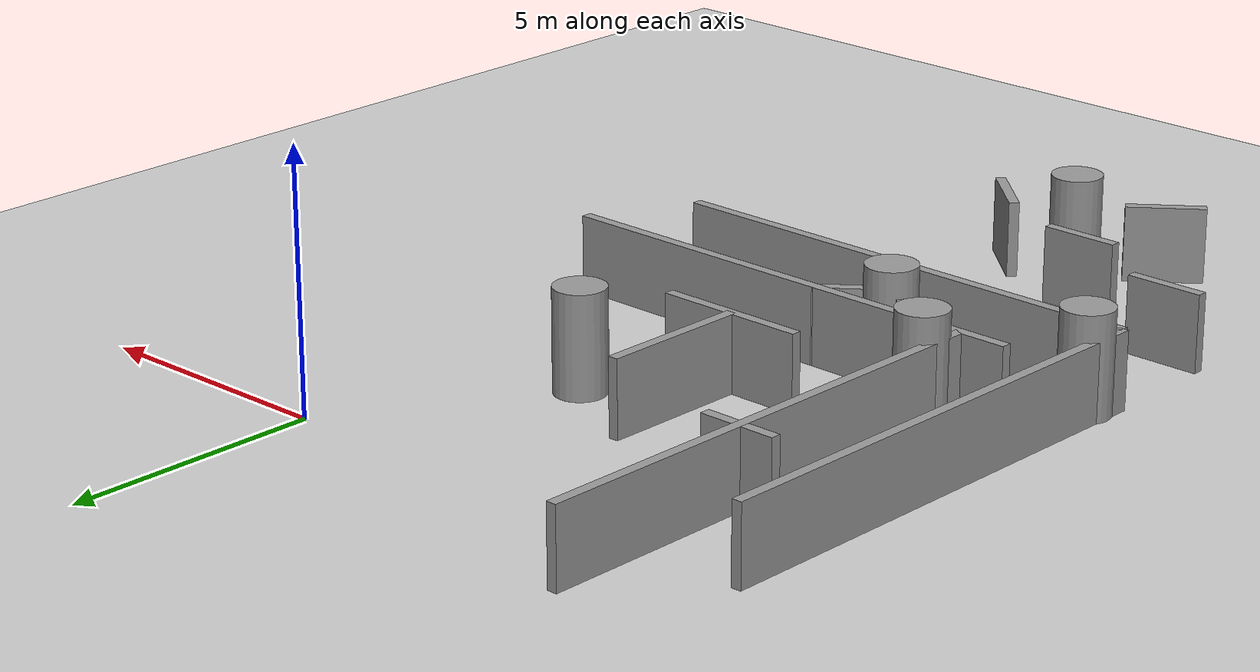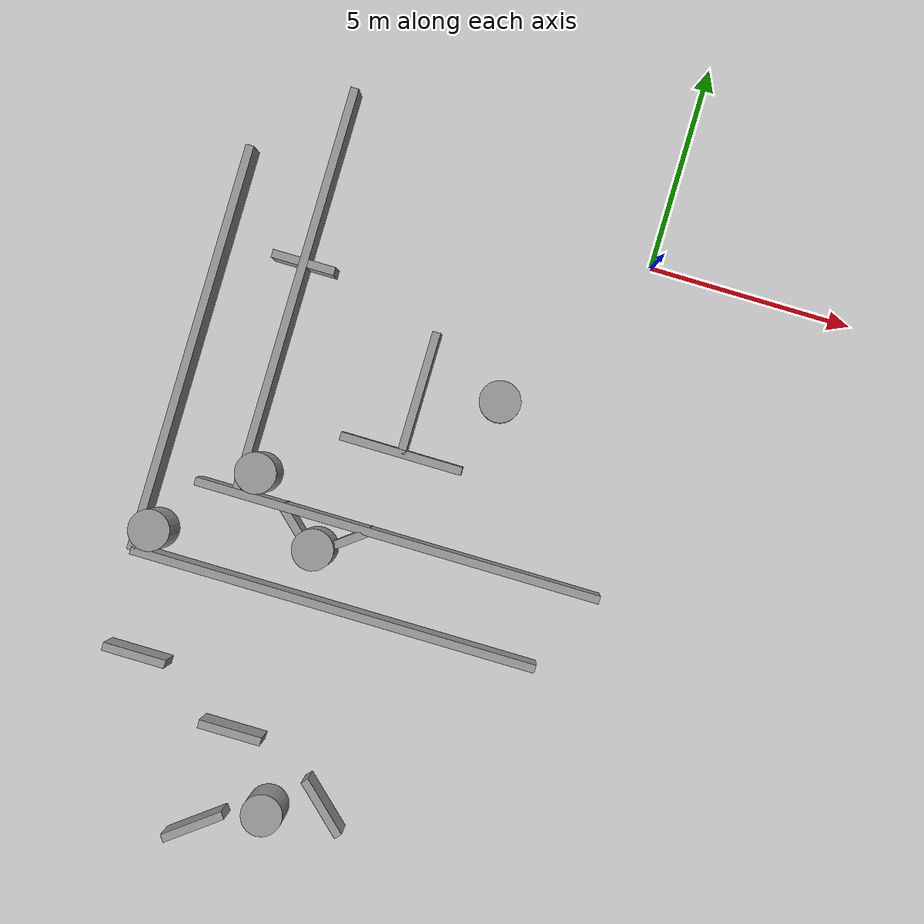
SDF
<sdf version="1.7">
 <world name="default">
  <model name="ground_plane">
   <static>1</static>
   <link name="link">
    <collision name="collision">
     <geometry><plane><normal>0 0 1</normal><size>100 100</size></plane></geometry>
     <surface><friction><ode><mu>100</mu><mu2>50</mu2></ode></friction></surface>
    </collision>
    <visual name="visual">
     <cast_shadows>0</cast_shadows>
     <geometry><plane><normal>0 0 1</normal><size>100 100</size></plane></geometry>
     <material>
      <script><uri>file://media/materials/scripts/gazebo.material</uri><name>Gazebo/Grey</name></script>
     </material>
    </visual>
   </link>
  </model>
  <model name="wall_10x3_clone_0">
   <link name="link">
    <inertial>
     <mass>1</mass>
     <inertia>
      <ixx>0.166667</ixx>
      <ixy>0</ixy>
      <ixz>0</ixz>
      <iyy>0.166667</iyy>
      <iyz>0</iyz>
      <izz>0.166667</izz>
     </inertia>
    </inertial>
    <visual name="visual">
     <geometry><box><size>10 0.2 1.5</size></box></geometry>
     <material>
      <script><name>Gazebo/Grey</name><uri>file://media/materials/scripts/gazebo.material</uri></script>
      <shader type="pixel"><normal_map>__default__</normal_map></shader>
      <ambient>0.3 0.3 0.3 1</ambient>
      <diffuse>0.7 0.7 0.7 1</diffuse>
      <specular>0.01 0.01 0.01 1</specular>
      <emissive>0 0 0 1</emissive>
     </material>
    </visual>
    <collision name="collision">
     <geometry><box><size>10 0.2 1.5</size></box></geometry>
     <surface>
      <friction>
       <ode><mu>1</mu><mu2>1</mu2><fdir1>0 0 0</fdir1><slip1>0</slip1><slip2>0</slip2></ode>
       <torsional>
        <coefficient>1</coefficient>
        <patch_radius>0</patch_radius>
        <surface_radius>0</surface_radius>
        <use_patch_radius>1</use_patch_radius>
        <ode><slip>0</slip></ode>
       </torsional>
      </friction>
      <bounce><restitution_coefficient>0</restitution_coefficient><threshold>1e+06</threshold></bounce>
      <contact>
       <collide_without_contact>0</collide_without_contact>
       <collide_without_contact_bitmask>1</collide_without_contact_bitmask>
       <collide_bitmask>1</collide_bitmask>
       <ode>
        <soft_cfm>0</soft_cfm>
        <soft_erp>0.2</soft_erp>
        <kp>1e+13</kp>
        <kd>1</kd>
        <max_vel>0.01</max_vel>
        <min_depth>0</min_depth>
       </ode>
       <bullet>
        <split_impulse>1</split_impulse>
        <split_impulse_penetration_threshold>-0.01</split_impulse_penetration_threshold>
        <soft_cfm>0</soft_cfm>
        <soft_erp>0.2</soft_erp>
        <kp>1e+13</kp>
        <kd>1</kd>
       </bullet>
      </contact>
     </surface>
    </collision>
   </link>
   <static>1</static>
   <pose>-5 -10 0.75 0 -0 0</pose>
  </model>
  <model name="wall_10x3_clone_3">
   <link name="link">
    <inertial>
     <mass>1</mass>
     <inertia>
      <ixx>0.166667</ixx>
      <ixy>0</ixy>
      <ixz>0</ixz>
      <iyy>0.166667</iyy>
      <iyz>0</iyz>
      <izz>0.166667</izz>
     </inertia>
    </inertial>
    <visual name="visual">
     <geometry><box><size>10 0.2 1.5</size></box></geometry>
     <material>
      <script><name>Gazebo/Grey</name><uri>file://media/materials/scripts/gazebo.material</uri></script>
      <shader type="pixel"><normal_map>__default__</normal_map></shader>
      <ambient>0.3 0.3 0.3 1</ambient>
      <diffuse>0.7 0.7 0.7 1</diffuse>
      <specular>0.01 0.01 0.01 1</specular>
      <emissive>0 0 0 1</emissive>
     </material>
    </visual>
    <collision name="collision">
     <geometry><box><size>10 0.2 1.5</size></box></geometry>
     <surface>
      <friction>
       <ode><mu>1</mu><mu2>1</mu2><fdir1>0 0 0</fdir1><slip1>0</slip1><slip2>0</slip2></ode>
       <torsional>
        <coefficient>1</coefficient>
        <patch_radius>0</patch_radius>
        <surface_radius>0</surface_radius>
        <use_patch_radius>1</use_patch_radius>
        <ode><slip>0</slip></ode>
       </torsional>
      </friction>
      <bounce><restitution_coefficient>0</restitution_coefficient><threshold>1e+06</threshold></bounce>
      <contact>
       <collide_without_contact>0</collide_without_contact>
       <collide_without_contact_bitmask>1</collide_without_contact_bitmask>
       <collide_bitmask>1</collide_bitmask>
       <ode>
        <soft_cfm>0</soft_cfm>
        <soft_erp>0.2</soft_erp>
        <kp>1e+13</kp>
        <kd>1</kd>
        <max_vel>0.01</max_vel>
        <min_depth>0</min_depth>
       </ode>
       <bullet>
        <split_impulse>1</split_impulse>
        <split_impulse_penetration_threshold>-0.01</split_impulse_penetration_threshold>
        <soft_cfm>0</soft_cfm>
        <soft_erp>0.2</soft_erp>
        <kp>1e+13</kp>
        <kd>1</kd>
       </bullet>
      </contact>
     </surface>
    </collision>
   </link>
   <static>1</static>
   <pose>-10 -5 0.75 0 -0 1.5708</pose>
  </model>
  <model name="wall_10x3_clone_2_clone">
   <link name="link">
    <inertial>
     <mass>1</mass>
     <inertia>
      <ixx>0.166667</ixx>
      <ixy>0</ixy>
      <ixz>0</ixz>
      <iyy>0.166667</iyy>
      <iyz>0</iyz>
      <izz>0.166667</izz>
     </inertia>
    </inertial>
    <visual name="visual">
     <geometry><box><size>10 0.2 1.5</size></box></geometry>
     <material>
      <script><name>Gazebo/Grey</name><uri>file://media/materials/scripts/gazebo.material</uri></script>
      <shader type="pixel"><normal_map>__default__</normal_map></shader>
      <ambient>0.3 0.3 0.3 1</ambient>
      <diffuse>0.7 0.7 0.7 1</diffuse>
      <specular>0.01 0.01 0.01 1</specular>
      <emissive>0 0 0 1</emissive>
     </material>
    </visual>
    <collision name="collision">
     <geometry><box><size>10 0.2 1.5</size></box></geometry>
     <surface>
      <friction>
       <ode><mu>1</mu><mu2>1</mu2><fdir1>0 0 0</fdir1><slip1>0</slip1><slip2>0</slip2></ode>
       <torsional>
        <coefficient>1</coefficient>
        <patch_radius>0</patch_radius>
        <surface_radius>0</surface_radius>
        <use_patch_radius>1</use_patch_radius>
        <ode><slip>0</slip></ode>
       </torsional>
      </friction>
      <bounce><restitution_coefficient>0</restitution_coefficient><threshold>1e+06</threshold></bounce>
      <contact>
       <collide_without_contact>0</collide_without_contact>
       <collide_without_contact_bitmask>1</collide_without_contact_bitmask>
       <collide_bitmask>1</collide_bitmask>
       <ode>
        <soft_cfm>0</soft_cfm>
        <soft_erp>0.2</soft_erp>
        <kp>1e+13</kp>
        <kd>1</kd>
        <max_vel>0.01</max_vel>
        <min_depth>0</min_depth>
       </ode>
       <bullet>
        <split_impulse>1</split_impulse>
        <split_impulse_penetration_threshold>-0.01</split_impulse_penetration_threshold>
        <soft_cfm>0</soft_cfm>
        <soft_erp>0.2</soft_erp>
        <kp>1e+13</kp>
        <kd>1</kd>
       </bullet>
      </contact>
     </surface>
    </collision>
   </link>
   <static>1</static>
   <pose>-4 -8 0.75 0 -0 0</pose>
  </model>
  <model name="wall_10x3_clone_3_clone_0_clone_clone_clone_clone_clone_0">
   <link name="link">
    <inertial>
     <mass>1</mass>
     <inertia>
      <ixx>0.166667</ixx>
      <ixy>0</ixy>
      <ixz>0</ixz>
      <iyy>0.166667</iyy>
      <iyz>0</iyz>
      <izz>0.166667</izz>
     </inertia>
    </inertial>
    <visual name="visual">
     <geometry><box><size>3 0.2 1.5</size></box></geometry>
     <material>
      <script><name>Gazebo/Grey</name><uri>file://media/materials/scripts/gazebo.material</uri></script>
      <shader type="pixel"><normal_map>__default__</normal_map></shader>
      <ambient>0.3 0.3 0.3 1</ambient>
      <diffuse>0.7 0.7 0.7 1</diffuse>
      <specular>0.01 0.01 0.01 1</specular>
      <emissive>0 0 0 1</emissive>
     </material>
    </visual>
    <collision name="collision">
     <geometry><box><size>3 0.2 1.5</size></box></geometry>
     <surface>
      <friction>
       <ode><mu>1</mu><mu2>1</mu2><fdir1>0 0 0</fdir1><slip1>0</slip1><slip2>0</slip2></ode>
       <torsional>
        <coefficient>1</coefficient>
        <patch_radius>0</patch_radius>
        <surface_radius>0</surface_radius>
        <use_patch_radius>1</use_patch_radius>
        <ode><slip>0</slip></ode>
       </torsional>
      </friction>
      <bounce><restitution_coefficient>0</restitution_coefficient><threshold>1e+06</threshold></bounce>
      <contact>
       <collide_without_contact>0</collide_without_contact>
       <collide_without_contact_bitmask>1</collide_without_contact_bitmask>
       <collide_bitmask>1</collide_bitmask>
       <ode>
        <soft_cfm>0</soft_cfm>
        <soft_erp>0.2</soft_erp>
        <kp>1e+13</kp>
        <kd>1</kd>
        <max_vel>0.01</max_vel>
        <min_depth>0</min_depth>
       </ode>
       <bullet>
        <split_impulse>1</split_impulse>
        <split_impulse_penetration_threshold>-0.01</split_impulse_penetration_threshold>
        <soft_cfm>0</soft_cfm>
        <soft_erp>0.2</soft_erp>
        <kp>1e+13</kp>
        <kd>1</kd>
       </bullet>
      </contact>
     </surface>
    </collision>
   </link>
   <static>1</static>
   <pose>-4.5 -6 0.75 0 -0 0</pose>
  </model>
  <model name="wall_10x3_clone_3_clone_0_clone_clone_clone_0">
   <link name="link">
    <inertial>
     <mass>1</mass>
     <inertia>
      <ixx>0.166667</ixx>
      <ixy>0</ixy>
      <ixz>0</ixz>
      <iyy>0.166667</iyy>
      <iyz>0</iyz>
      <izz>0.166667</izz>
     </inertia>
    </inertial>
    <visual name="visual">
     <geometry><box><size>10 0.2 1.5</size></box></geometry>
     <material>
      <script><name>Gazebo/Grey</name><uri>file://media/materials/scripts/gazebo.material</uri></script>
      <shader type="pixel"><normal_map>__default__</normal_map></shader>
      <ambient>0.3 0.3 0.3 1</ambient>
      <diffuse>0.7 0.7 0.7 1</diffuse>
      <specular>0.01 0.01 0.01 1</specular>
      <emissive>0 0 0 1</emissive>
     </material>
    </visual>
    <collision name="collision">
     <geometry><box><size>10 0.2 1.5</size></box></geometry>
     <surface>
      <friction>
       <ode><mu>1</mu><mu2>1</mu2><fdir1>0 0 0</fdir1><slip1>0</slip1><slip2>0</slip2></ode>
       <torsional>
        <coefficient>1</coefficient>
        <patch_radius>0</patch_radius>
        <surface_radius>0</surface_radius>
        <use_patch_radius>1</use_patch_radius>
        <ode><slip>0</slip></ode>
       </torsional>
      </friction>
      <bounce><restitution_coefficient>0</restitution_coefficient><threshold>1e+06</threshold></bounce>
      <contact>
       <collide_without_contact>0</collide_without_contact>
       <collide_without_contact_bitmask>1</collide_without_contact_bitmask>
       <collide_bitmask>1</collide_bitmask>
       <ode>
        <soft_cfm>0</soft_cfm>
        <soft_erp>0.2</soft_erp>
        <kp>1e+13</kp>
        <kd>1</kd>
        <max_vel>0.01</max_vel>
        <min_depth>0</min_depth>
       </ode>
       <bullet>
        <split_impulse>1</split_impulse>
        <split_impulse_penetration_threshold>-0.01</split_impulse_penetration_threshold>
        <soft_cfm>0</soft_cfm>
        <soft_erp>0.2</soft_erp>
        <kp>1e+13</kp>
        <kd>1</kd>
       </bullet>
      </contact>
     </surface>
    </collision>
   </link>
   <static>1</static>
   <pose>-8 -3 0.75 0 -0 1.5708</pose>
  </model>
  <model name="wall_10x3_clone_3_clone_0_clone_clone_clone_clone_6_clone_7">
   <link name="link">
    <inertial>
     <mass>1</mass>
     <inertia>
      <ixx>0.166667</ixx>
      <ixy>0</ixy>
      <ixz>0</ixz>
      <iyy>0.166667</iyy>
      <iyz>0</iyz>
      <izz>0.166667</izz>
     </inertia>
    </inertial>
    <visual name="visual">
     <geometry><box><size>3 0.2 1.5</size></box></geometry>
     <material>
      <script><name>Gazebo/Grey</name><uri>file://media/materials/scripts/gazebo.material</uri></script>
      <shader type="pixel"><normal_map>__default__</normal_map></shader>
      <ambient>0.3 0.3 0.3 1</ambient>
      <diffuse>0.7 0.7 0.7 1</diffuse>
      <specular>0.01 0.01 0.01 1</specular>
      <emissive>0 0 0 1</emissive>
     </material>
    </visual>
    <collision name="collision">
     <geometry><box><size>3 0.2 1.5</size></box></geometry>
     <surface>
      <friction>
       <ode><mu>1</mu><mu2>1</mu2><fdir1>0 0 0</fdir1><slip1>0</slip1><slip2>0</slip2></ode>
       <torsional>
        <coefficient>1</coefficient>
        <patch_radius>0</patch_radius>
        <surface_radius>0</surface_radius>
        <use_patch_radius>1</use_patch_radius>
        <ode><slip>0</slip></ode>
       </torsional>
      </friction>
      <bounce><restitution_coefficient>0</restitution_coefficient><threshold>1e+06</threshold></bounce>
      <contact>
       <collide_without_contact>0</collide_without_contact>
       <collide_without_contact_bitmask>1</collide_without_contact_bitmask>
       <collide_bitmask>1</collide_bitmask>
       <ode>
        <soft_cfm>0</soft_cfm>
        <soft_erp>0.2</soft_erp>
        <kp>1e+13</kp>
        <kd>1</kd>
        <max_vel>0.01</max_vel>
        <min_depth>0</min_depth>
       </ode>
       <bullet>
        <split_impulse>1</split_impulse>
        <split_impulse_penetration_threshold>-0.01</split_impulse_penetration_threshold>
        <soft_cfm>0</soft_cfm>
        <soft_erp>0.2</soft_erp>
        <kp>1e+13</kp>
        <kd>1</kd>
       </bullet>
      </contact>
     </surface>
    </collision>
   </link>
   <static>1</static>
   <pose>-4.5 -4.5 0.75 0 -0 1.5708</pose>
  </model>
  <model name="wall_10x3_clone_3_clone_0_clone_clone_clone_clone_clone_0_clone">
   <link name="link">
    <inertial>
     <mass>0.514545</mass>
     <inertia>
      <ixx>0.0981923</ixx>
      <ixy>0</ixy>
      <ixz>0</ixz>
      <iyy>0.198649</iyy>
      <iyz>0</iyz>
      <izz>0.103887</izz>
     </inertia>
    </inertial>
    <visual name="visual">
     <geometry><box><size>1.54363 0.2 1.5</size></box></geometry>
     <material>
      <script><name>Gazebo/Grey</name><uri>file://media/materials/scripts/gazebo.material</uri></script>
      <shader type="pixel"><normal_map>__default__</normal_map></shader>
      <ambient>0.3 0.3 0.3 1</ambient>
      <diffuse>0.7 0.7 0.7 1</diffuse>
      <specular>0.01 0.01 0.01 1</specular>
      <emissive>0 0 0 1</emissive>
     </material>
    </visual>
    <collision name="collision">
     <geometry><box><size>1.54363 0.2 1.5</size></box></geometry>
     <surface>
      <friction>
       <ode><mu>1</mu><mu2>1</mu2><fdir1>0 0 0</fdir1><slip1>0</slip1><slip2>0</slip2></ode>
       <torsional>
        <coefficient>1</coefficient>
        <patch_radius>0</patch_radius>
        <surface_radius>0</surface_radius>
        <use_patch_radius>1</use_patch_radius>
        <ode><slip>0</slip></ode>
       </torsional>
      </friction>
      <bounce><restitution_coefficient>0</restitution_coefficient><threshold>1e+06</threshold></bounce>
      <contact>
       <collide_without_contact>0</collide_without_contact>
       <collide_without_contact_bitmask>1</collide_without_contact_bitmask>
       <collide_bitmask>1</collide_bitmask>
       <ode>
        <soft_cfm>0</soft_cfm>
        <soft_erp>0.2</soft_erp>
        <kp>1e+13</kp>
        <kd>1</kd>
        <max_vel>0.01</max_vel>
        <min_depth>0</min_depth>
       </ode>
       <bullet>
        <split_impulse>1</split_impulse>
        <split_impulse_penetration_threshold>-0.01</split_impulse_penetration_threshold>
        <soft_cfm>0</soft_cfm>
        <soft_erp>0.2</soft_erp>
        <kp>1e+13</kp>
        <kd>1</kd>
       </bullet>
      </contact>
     </surface>
    </collision>
   </link>
   <static>1</static>
   <pose>-6.52231 -13.4942 0.75 0 -0 0</pose>
  </model>
  <model name="wall_10x3_clone_3_clone_0_clone_clone_clone_clone_clone_0_clone_clone">
   <link name="link">
    <inertial>
     <mass>0.514545</mass>
     <inertia>
      <ixx>0.0981923</ixx>
      <ixy>0</ixy>
      <ixz>0</ixz>
      <iyy>0.198649</iyy>
      <iyz>0</iyz>
      <izz>0.103887</izz>
     </inertia>
    </inertial>
    <pose>0 0 0 0 0 -0.740677</pose>
    <visual name="visual">
     <geometry><box><size>1.54363 0.2 1.5</size></box></geometry>
     <material>
      <script><name>Gazebo/Grey</name><uri>file://media/materials/scripts/gazebo.material</uri></script>
      <shader type="pixel"><normal_map>__default__</normal_map></shader>
      <ambient>0.3 0.3 0.3 1</ambient>
      <diffuse>0.7 0.7 0.7 1</diffuse>
      <specular>0.01 0.01 0.01 1</specular>
      <emissive>0 0 0 1</emissive>
     </material>
    </visual>
    <collision name="collision">
     <geometry><box><size>1.54363 0.2 1.5</size></box></geometry>
     <surface>
      <friction>
       <ode><mu>1</mu><mu2>1</mu2><fdir1>0 0 0</fdir1><slip1>0</slip1><slip2>0</slip2></ode>
       <torsional>
        <coefficient>1</coefficient>
        <patch_radius>0</patch_radius>
        <surface_radius>0</surface_radius>
        <use_patch_radius>1</use_patch_radius>
        <ode><slip>0</slip></ode>
       </torsional>
      </friction>
      <bounce><restitution_coefficient>0</restitution_coefficient><threshold>1e+06</threshold></bounce>
      <contact>
       <collide_without_contact>0</collide_without_contact>
       <collide_without_contact_bitmask>1</collide_without_contact_bitmask>
       <collide_bitmask>1</collide_bitmask>
       <ode>
        <soft_cfm>0</soft_cfm>
        <soft_erp>0.2</soft_erp>
        <kp>1e+13</kp>
        <kd>1</kd>
        <max_vel>0.01</max_vel>
        <min_depth>0</min_depth>
       </ode>
       <bullet>
        <split_impulse>1</split_impulse>
        <split_impulse_penetration_threshold>-0.01</split_impulse_penetration_threshold>
        <soft_cfm>0</soft_cfm>
        <soft_erp>0.2</soft_erp>
        <kp>1e+13</kp>
        <kd>1</kd>
       </bullet>
      </contact>
     </surface>
    </collision>
   </link>
   <static>1</static>
   <pose>-3.92402 -14.6044 0.75 0 -0 0</pose>
  </model>
  <model name="wall_10x3_clone_3_clone_0_clone_clone_clone_clone_clone_0_clone_clone_clone">
   <link name="link">
    <inertial>
     <mass>0.514545</mass>
     <inertia>
      <ixx>0.0981923</ixx>
      <ixy>0</ixy>
      <ixz>0</ixz>
      <iyy>0.198649</iyy>
      <iyz>0</iyz>
      <izz>0.103887</izz>
     </inertia>
    </inertial>
    <pose>0 0 0 0 0 -2.49068</pose>
    <visual name="visual">
     <geometry><box><size>1.54363 0.2 1.5</size></box></geometry>
     <material>
      <script><name>Gazebo/Grey</name><uri>file://media/materials/scripts/gazebo.material</uri></script>
      <shader type="pixel"><normal_map>__default__</normal_map></shader>
      <ambient>0.3 0.3 0.3 1</ambient>
      <diffuse>0.7 0.7 0.7 1</diffuse>
      <specular>0.01 0.01 0.01 1</specular>
      <emissive>0 0 0 1</emissive>
     </material>
    </visual>
    <collision name="collision">
     <geometry><box><size>1.54363 0.2 1.5</size></box></geometry>
     <surface>
      <friction>
       <ode><mu>1</mu><mu2>1</mu2><fdir1>0 0 0</fdir1><slip1>0</slip1><slip2>0</slip2></ode>
       <torsional>
        <coefficient>1</coefficient>
        <patch_radius>0</patch_radius>
        <surface_radius>0</surface_radius>
        <use_patch_radius>1</use_patch_radius>
        <ode><slip>0</slip></ode>
       </torsional>
      </friction>
      <bounce><restitution_coefficient>0</restitution_coefficient><threshold>1e+06</threshold></bounce>
      <contact>
       <collide_without_contact>0</collide_without_contact>
       <collide_without_contact_bitmask>1</collide_without_contact_bitmask>
       <collide_bitmask>1</collide_bitmask>
       <ode>
        <soft_cfm>0</soft_cfm>
        <soft_erp>0.2</soft_erp>
        <kp>1e+13</kp>
        <kd>1</kd>
        <max_vel>0.01</max_vel>
        <min_depth>0</min_depth>
       </ode>
       <bullet>
        <split_impulse>1</split_impulse>
        <split_impulse_penetration_threshold>-0.01</split_impulse_penetration_threshold>
        <soft_cfm>0</soft_cfm>
        <soft_erp>0.2</soft_erp>
        <kp>1e+13</kp>
        <kd>1</kd>
       </bullet>
      </contact>
     </surface>
    </collision>
   </link>
   <static>1</static>
   <pose>-6.73897 -15.8855 0.75 0 -0 0</pose>
  </model>
  <model name="wall_10x3_clone_3_clone_0_clone_clone_clone_clone_clone_0_clone_clone_6">
   <link name="link">
    <inertial>
     <mass>0.514545</mass>
     <inertia>
      <ixx>0.0981923</ixx>
      <ixy>0</ixy>
      <ixz>0</ixz>
      <iyy>0.198649</iyy>
      <iyz>0</iyz>
      <izz>0.103887</izz>
     </inertia>
    </inertial>
    <visual name="visual">
     <geometry><box><size>1.54363 0.2 1.5</size></box></geometry>
     <material>
      <script><name>Gazebo/Grey</name><uri>file://media/materials/scripts/gazebo.material</uri></script>
      <shader type="pixel"><normal_map>__default__</normal_map></shader>
      <ambient>0.3 0.3 0.3 1</ambient>
      <diffuse>0.7 0.7 0.7 1</diffuse>
      <specular>0.01 0.01 0.01 1</specular>
      <emissive>0 0 0 1</emissive>
     </material>
    </visual>
    <collision name="collision">
     <geometry><box><size>1.54363 0.2 1.5</size></box></geometry>
     <surface>
      <friction>
       <ode><mu>1</mu><mu2>1</mu2><fdir1>0 0 0</fdir1><slip1>0</slip1><slip2>0</slip2></ode>
       <torsional>
        <coefficient>1</coefficient>
        <patch_radius>0</patch_radius>
        <surface_radius>0</surface_radius>
        <use_patch_radius>1</use_patch_radius>
        <ode><slip>0</slip></ode>
       </torsional>
      </friction>
      <bounce><restitution_coefficient>0</restitution_coefficient><threshold>1e+06</threshold></bounce>
      <contact>
       <collide_without_contact>0</collide_without_contact>
       <collide_without_contact_bitmask>1</collide_without_contact_bitmask>
       <collide_bitmask>1</collide_bitmask>
       <ode>
        <soft_cfm>0</soft_cfm>
        <soft_erp>0.2</soft_erp>
        <kp>1e+13</kp>
        <kd>1</kd>
        <max_vel>0.01</max_vel>
        <min_depth>0</min_depth>
       </ode>
       <bullet>
        <split_impulse>1</split_impulse>
        <split_impulse_penetration_threshold>-0.01</split_impulse_penetration_threshold>
        <soft_cfm>0</soft_cfm>
        <soft_erp>0.2</soft_erp>
        <kp>1e+13</kp>
        <kd>1</kd>
       </bullet>
      </contact>
     </surface>
    </collision>
   </link>
   <static>1</static>
   <pose>-8.00144 -2.30721 0.75 0 -0 0</pose>
  </model>
  <model name="wall_10x3_clone_3_clone_0_clone_clone_clone_clone_clone_0_clone_clone_9">
   <link name="link">
    <inertial>
     <mass>0.514545</mass>
     <inertia>
      <ixx>0.0981923</ixx>
      <ixy>0</ixy>
      <ixz>0</ixz>
      <iyy>0.198649</iyy>
      <iyz>0</iyz>
      <izz>0.103887</izz>
     </inertia>
    </inertial>
    <visual name="visual">
     <geometry><box><size>1.54363 0.2 1.5</size></box></geometry>
     <material>
      <script><name>Gazebo/Grey</name><uri>file://media/materials/scripts/gazebo.material</uri></script>
      <shader type="pixel"><normal_map>__default__</normal_map></shader>
      <ambient>0.3 0.3 0.3 1</ambient>
      <diffuse>0.7 0.7 0.7 1</diffuse>
      <specular>0.01 0.01 0.01 1</specular>
      <emissive>0 0 0 1</emissive>
     </material>
    </visual>
    <collision name="collision">
     <geometry><box><size>1.54363 0.2 1.5</size></box></geometry>
     <surface>
      <friction>
       <ode><mu>1</mu><mu2>1</mu2><fdir1>0 0 0</fdir1><slip1>0</slip1><slip2>0</slip2></ode>
       <torsional>
        <coefficient>1</coefficient>
        <patch_radius>0</patch_radius>
        <surface_radius>0</surface_radius>
        <use_patch_radius>1</use_patch_radius>
        <ode><slip>0</slip></ode>
       </torsional>
      </friction>
      <bounce><restitution_coefficient>0</restitution_coefficient><threshold>1e+06</threshold></bounce>
      <contact>
       <collide_without_contact>0</collide_without_contact>
       <collide_without_contact_bitmask>1</collide_without_contact_bitmask>
       <collide_bitmask>1</collide_bitmask>
       <ode>
        <soft_cfm>0</soft_cfm>
        <soft_erp>0.2</soft_erp>
        <kp>1e+13</kp>
        <kd>1</kd>
        <max_vel>0.01</max_vel>
        <min_depth>0</min_depth>
       </ode>
       <bullet>
        <split_impulse>1</split_impulse>
        <split_impulse_penetration_threshold>-0.01</split_impulse_penetration_threshold>
        <soft_cfm>0</soft_cfm>
        <soft_erp>0.2</soft_erp>
        <kp>1e+13</kp>
        <kd>1</kd>
       </bullet>
      </contact>
     </surface>
    </collision>
   </link>
   <static>1</static>
   <pose>-9.22014 -12.3756 0.75 0 -0 0</pose>
  </model>
  <model name="wall_10x3_clone_3_clone_0_clone_clone_clone_clone_clone_0_clone_clone_clone_clone_0">
   <link name="link">
    <inertial>
     <mass>0.514545</mass>
     <inertia>
      <ixx>0.0981923</ixx>
      <ixy>0</ixy>
      <ixz>0</ixz>
      <iyy>0.198649</iyy>
      <iyz>0</iyz>
      <izz>0.103887</izz>
     </inertia>
    </inertial>
    <pose>0 0 0 0 0 -2.49068</pose>
    <visual name="visual">
     <geometry><box><size>1.54363 0.2 1.5</size></box></geometry>
     <material>
      <script><name>Gazebo/Grey</name><uri>file://media/materials/scripts/gazebo.material</uri></script>
      <shader type="pixel"><normal_map>__default__</normal_map></shader>
      <ambient>0.3 0.3 0.3 1</ambient>
      <diffuse>0.7 0.7 0.7 1</diffuse>
      <specular>0.01 0.01 0.01 1</specular>
      <emissive>0 0 0 1</emissive>
     </material>
    </visual>
    <collision name="collision">
     <geometry><box><size>1.54363 0.2 1.5</size></box></geometry>
     <surface>
      <friction>
       <ode><mu>1</mu><mu2>1</mu2><fdir1>0 0 0</fdir1><slip1>0</slip1><slip2>0</slip2></ode>
       <torsional>
        <coefficient>1</coefficient>
        <patch_radius>0</patch_radius>
        <surface_radius>0</surface_radius>
        <use_patch_radius>1</use_patch_radius>
        <ode><slip>0</slip></ode>
       </torsional>
      </friction>
      <bounce><restitution_coefficient>0</restitution_coefficient><threshold>1e+06</threshold></bounce>
      <contact>
       <collide_without_contact>0</collide_without_contact>
       <collide_without_contact_bitmask>1</collide_without_contact_bitmask>
       <collide_bitmask>1</collide_bitmask>
       <ode>
        <soft_cfm>0</soft_cfm>
        <soft_erp>0.2</soft_erp>
        <kp>1e+13</kp>
        <kd>1</kd>
        <max_vel>0.01</max_vel>
        <min_depth>0</min_depth>
       </ode>
       <bullet>
        <split_impulse>1</split_impulse>
        <split_impulse_penetration_threshold>-0.01</split_impulse_penetration_threshold>
        <soft_cfm>0</soft_cfm>
        <soft_erp>0.2</soft_erp>
        <kp>1e+13</kp>
        <kd>1</kd>
       </bullet>
      </contact>
     </surface>
    </collision>
   </link>
   <static>1</static>
   <pose>-5.26522 -8.43251 0.75 0 -0 0</pose>
  </model>
  <model name="wall_10x3_clone_3_clone_0_clone_clone_clone_clone_clone_0_clone_clone_clone_1">
   <link name="link">
    <inertial>
     <mass>0.514545</mass>
     <inertia>
      <ixx>0.0981923</ixx>
      <ixy>0</ixy>
      <ixz>0</ixz>
      <iyy>0.198649</iyy>
      <iyz>0</iyz>
      <izz>0.103887</izz>
     </inertia>
    </inertial>
    <pose>0 0 0 0 0 -0.740677</pose>
    <visual name="visual">
     <geometry><box><size>1.54363 0.2 1.5</size></box></geometry>
     <material>
      <script><name>Gazebo/Grey</name><uri>file://media/materials/scripts/gazebo.material</uri></script>
      <shader type="pixel"><normal_map>__default__</normal_map></shader>
      <ambient>0.3 0.3 0.3 1</ambient>
      <diffuse>0.7 0.7 0.7 1</diffuse>
      <specular>0.01 0.01 0.01 1</specular>
      <emissive>0 0 0 1</emissive>
     </material>
    </visual>
    <collision name="collision">
     <geometry><box><size>1.54363 0.2 1.5</size></box></geometry>
     <surface>
      <friction>
       <ode><mu>1</mu><mu2>1</mu2><fdir1>0 0 0</fdir1><slip1>0</slip1><slip2>0</slip2></ode>
       <torsional>
        <coefficient>1</coefficient>
        <patch_radius>0</patch_radius>
        <surface_radius>0</surface_radius>
        <use_patch_radius>1</use_patch_radius>
        <ode><slip>0</slip></ode>
       </torsional>
      </friction>
      <bounce><restitution_coefficient>0</restitution_coefficient><threshold>1e+06</threshold></bounce>
      <contact>
       <collide_without_contact>0</collide_without_contact>
       <collide_without_contact_bitmask>1</collide_without_contact_bitmask>
       <collide_bitmask>1</collide_bitmask>
       <ode>
        <soft_cfm>0</soft_cfm>
        <soft_erp>0.2</soft_erp>
        <kp>1e+13</kp>
        <kd>1</kd>
        <max_vel>0.01</max_vel>
        <min_depth>0</min_depth>
       </ode>
       <bullet>
        <split_impulse>1</split_impulse>
        <split_impulse_penetration_threshold>-0.01</split_impulse_penetration_threshold>
        <soft_cfm>0</soft_cfm>
        <soft_erp>0.2</soft_erp>
        <kp>1e+13</kp>
        <kd>1</kd>
       </bullet>
      </contact>
     </surface>
    </collision>
   </link>
   <static>1</static>
   <pose>-6.31012 -8.48241 0.75 0 -0 0</pose>
  </model>
  <model name="unit_cylinder">
   <link name="link">
    <inertial>
     <mass>1</mass>
     <inertia><ixx>0.145833</ixx><ixy>0</ixy><ixz>0</ixz><iyy>0.145833</iyy><iyz>0</iyz><izz>0.125</izz></inertia>
    </inertial>
    <visual name="visual">
     <geometry><cylinder><radius>0.5</radius><length>2</length></cylinder></geometry>
     <material>
      <script><name>Gazebo/Grey</name><uri>file://media/materials/scripts/gazebo.material</uri></script>
      <shader type="pixel"><normal_map>__default__</normal_map></shader>
      <ambient>0.3 0.3 0.3 1</ambient>
      <diffuse>0.7 0.7 0.7 1</diffuse>
      <specular>0.01 0.01 0.01 1</specular>
      <emissive>0 0 0 1</emissive>
     </material>
    </visual>
    <collision name="collision">
     <geometry><cylinder><radius>0.5</radius><length>2</length></cylinder></geometry>
     <surface>
      <friction>
       <ode><mu>1</mu><mu2>1</mu2><fdir1>0 0 0</fdir1><slip1>0</slip1><slip2>0</slip2></ode>
       <torsional>
        <coefficient>1</coefficient>
        <patch_radius>0</patch_radius>
        <surface_radius>0</surface_radius>
        <use_patch_radius>1</use_patch_radius>
        <ode><slip>0</slip></ode>
       </torsional>
      </friction>
      <bounce><restitution_coefficient>0</restitution_coefficient><threshold>1e+06</threshold></bounce>
      <contact>
       <collide_without_contact>0</collide_without_contact>
       <collide_without_contact_bitmask>1</collide_without_contact_bitmask>
       <collide_bitmask>1</collide_bitmask>
       <ode>
        <soft_cfm>0</soft_cfm>
        <soft_erp>0.2</soft_erp>
        <kp>1e+13</kp>
        <kd>1</kd>
        <max_vel>0.01</max_vel>
        <min_depth>0</min_depth>
       </ode>
       <bullet>
        <split_impulse>1</split_impulse>
        <split_impulse_penetration_threshold>-0.01</split_impulse_penetration_threshold>
        <soft_cfm>0</soft_cfm>
        <soft_erp>0.2</soft_erp>
        <kp>1e+13</kp>
        <kd>1</kd>
       </bullet>
      </contact>
     </surface>
    </collision>
   </link>
   <static>0</static>
   <pose>-5.21891 -15.0805 1 0 -0 1e-06</pose>
  </model>
  <model name="unit_cylinder_clone_8">
   <link name="link">
    <inertial>
     <mass>1</mass>
     <inertia><ixx>0.145833</ixx><ixy>0</ixy><ixz>0</ixz><iyy>0.145833</iyy><iyz>0</iyz><izz>0.125</izz></inertia>
    </inertial>
    <visual name="visual">
     <geometry><cylinder><radius>0.5</radius><length>2</length></cylinder></geometry>
     <material>
      <script><name>Gazebo/Grey</name><uri>file://media/materials/scripts/gazebo.material</uri></script>
      <shader type="pixel"><normal_map>__default__</normal_map></shader>
      <ambient>0.3 0.3 0.3 1</ambient>
      <diffuse>0.7 0.7 0.7 1</diffuse>
      <specular>0.01 0.01 0.01 1</specular>
      <emissive>0 0 0 1</emissive>
     </material>
    </visual>
    <collision name="collision">
     <geometry><cylinder><radius>0.5</radius><length>2</length></cylinder></geometry>
     <surface>
      <friction>
       <ode><mu>1</mu><mu2>1</mu2><fdir1>0 0 0</fdir1><slip1>0</slip1><slip2>0</slip2></ode>
       <torsional>
        <coefficient>1</coefficient>
        <patch_radius>0</patch_radius>
        <surface_radius>0</surface_radius>
        <use_patch_radius>1</use_patch_radius>
        <ode><slip>0</slip></ode>
       </torsional>
      </friction>
      <bounce><restitution_coefficient>0</restitution_coefficient><threshold>1e+06</threshold></bounce>
      <contact>
       <collide_without_contact>0</collide_without_contact>
       <collide_without_contact_bitmask>1</collide_without_contact_bitmask>
       <collide_bitmask>1</collide_bitmask>
       <ode>
        <soft_cfm>0</soft_cfm>
        <soft_erp>0.2</soft_erp>
        <kp>1e+13</kp>
        <kd>1</kd>
        <max_vel>0.01</max_vel>
        <min_depth>0</min_depth>
       </ode>
       <bullet>
        <split_impulse>1</split_impulse>
        <split_impulse_penetration_threshold>-0.01</split_impulse_penetration_threshold>
        <soft_cfm>0</soft_cfm>
        <soft_erp>0.2</soft_erp>
        <kp>1e+13</kp>
        <kd>1</kd>
       </bullet>
      </contact>
     </surface>
    </collision>
   </link>
   <static>0</static>
   <pose>-2.59181 -4.16126 0.999992 0 0 -0.022175</pose>
  </model>
  <model name="unit_cylinder_clone_8_clone">
   <link name="link">
    <inertial>
     <mass>1</mass>
     <inertia><ixx>0.145833</ixx><ixy>0</ixy><ixz>0</ixz><iyy>0.145833</iyy><iyz>0</iyz><izz>0.125</izz></inertia>
    </inertial>
    <visual name="visual">
     <geometry><cylinder><radius>0.5</radius><length>2</length></cylinder></geometry>
     <material>
      <script><name>Gazebo/Grey</name><uri>file://media/materials/scripts/gazebo.material</uri></script>
      <shader type="pixel"><normal_map>__default__</normal_map></shader>
      <ambient>0.3 0.3 0.3 1</ambient>
      <diffuse>0.7 0.7 0.7 1</diffuse>
      <specular>0.01 0.01 0.01 1</specular>
      <emissive>0 0 0 1</emissive>
     </material>
    </visual>
    <collision name="collision">
     <geometry><cylinder><radius>0.5</radius><length>2</length></cylinder></geometry>
     <surface>
      <friction>
       <ode><mu>1</mu><mu2>1</mu2><fdir1>0 0 0</fdir1><slip1>0</slip1><slip2>0</slip2></ode>
       <torsional>
        <coefficient>1</coefficient>
        <patch_radius>0</patch_radius>
        <surface_radius>0</surface_radius>
        <use_patch_radius>1</use_patch_radius>
        <ode><slip>0</slip></ode>
       </torsional>
      </friction>
      <bounce><restitution_coefficient>0</restitution_coefficient><threshold>1e+06</threshold></bounce>
      <contact>
       <collide_without_contact>0</collide_without_contact>
       <collide_without_contact_bitmask>1</collide_without_contact_bitmask>
       <collide_bitmask>1</collide_bitmask>
       <ode>
        <soft_cfm>0</soft_cfm>
        <soft_erp>0.2</soft_erp>
        <kp>1e+13</kp>
        <kd>1</kd>
        <max_vel>0.01</max_vel>
        <min_depth>0</min_depth>
       </ode>
       <bullet>
        <split_impulse>1</split_impulse>
        <split_impulse_penetration_threshold>-0.01</split_impulse_penetration_threshold>
        <soft_cfm>0</soft_cfm>
        <soft_erp>0.2</soft_erp>
        <kp>1e+13</kp>
        <kd>1</kd>
       </bullet>
      </contact>
     </surface>
    </collision>
   </link>
   <static>0</static>
   <pose>-7.63259 -7.39999 0.999998 0 -0 -0.022175</pose>
  </model>
  <model name="unit_cylinder_clone_8_clone_1">
   <link name="link">
    <inertial>
     <mass>1</mass>
     <inertia><ixx>0.145833</ixx><ixy>0</ixy><ixz>0</ixz><iyy>0.145833</iyy><iyz>0</iyz><izz>0.125</izz></inertia>
    </inertial>
    <visual name="visual">
     <geometry><cylinder><radius>0.5</radius><length>2</length></cylinder></geometry>
     <material>
      <script><name>Gazebo/Grey</name><uri>file://media/materials/scripts/gazebo.material</uri></script>
      <shader type="pixel"><normal_map>__default__</normal_map></shader>
      <ambient>0.3 0.3 0.3 1</ambient>
      <diffuse>0.7 0.7 0.7 1</diffuse>
      <specular>0.01 0.01 0.01 1</specular>
      <emissive>0 0 0 1</emissive>
     </material>
    </visual>
    <collision name="collision">
     <geometry><cylinder><radius>0.5</radius><length>2</length></cylinder></geometry>
     <surface>
      <friction>
       <ode><mu>1</mu><mu2>1</mu2><fdir1>0 0 0</fdir1><slip1>0</slip1><slip2>0</slip2></ode>
       <torsional>
        <coefficient>1</coefficient>
        <patch_radius>0</patch_radius>
        <surface_radius>0</surface_radius>
        <use_patch_radius>1</use_patch_radius>
        <ode><slip>0</slip></ode>
       </torsional>
      </friction>
      <bounce><restitution_coefficient>0</restitution_coefficient><threshold>1e+06</threshold></bounce>
      <contact>
       <collide_without_contact>0</collide_without_contact>
       <collide_without_contact_bitmask>1</collide_without_contact_bitmask>
       <collide_bitmask>1</collide_bitmask>
       <ode>
        <soft_cfm>0</soft_cfm>
        <soft_erp>0.2</soft_erp>
        <kp>1e+13</kp>
        <kd>1</kd>
        <max_vel>0.01</max_vel>
        <min_depth>0</min_depth>
       </ode>
       <bullet>
        <split_impulse>1</split_impulse>
        <split_impulse_penetration_threshold>-0.01</split_impulse_penetration_threshold>
        <soft_cfm>0</soft_cfm>
        <soft_erp>0.2</soft_erp>
        <kp>1e+13</kp>
        <kd>1</kd>
       </bullet>
      </contact>
     </surface>
    </collision>
   </link>
   <static>0</static>
   <pose>-5.83457 -8.7532 0.999998 0 -0 -0.022175</pose>
  </model>
  <model name="unit_cylinder_clone_8_clone_2">
   <link name="link">
    <inertial>
     <mass>1</mass>
     <inertia><ixx>0.145833</ixx><ixy>0</ixy><ixz>0</ixz><iyy>0.145833</iyy><iyz>0</iyz><izz>0.125</izz></inertia>
    </inertial>
    <visual name="visual">
     <geometry><cylinder><radius>0.5</radius><length>2</length></cylinder></geometry>
     <material>
      <script><name>Gazebo/Grey</name><uri>file://media/materials/scripts/gazebo.material</uri></script>
      <shader type="pixel"><normal_map>__default__</normal_map></shader>
      <ambient>0.3 0.3 0.3 1</ambient>
      <diffuse>0.7 0.7 0.7 1</diffuse>
      <specular>0.01 0.01 0.01 1</specular>
      <emissive>0 0 0 1</emissive>
     </material>
    </visual>
    <collision name="collision">
     <geometry><cylinder><radius>0.5</radius><length>2</length></cylinder></geometry>
     <surface>
      <friction>
       <ode><mu>1</mu><mu2>1</mu2><fdir1>0 0 0</fdir1><slip1>0</slip1><slip2>0</slip2></ode>
       <torsional>
        <coefficient>1</coefficient>
        <patch_radius>0</patch_radius>
        <surface_radius>0</surface_radius>
        <use_patch_radius>1</use_patch_radius>
        <ode><slip>0</slip></ode>
       </torsional>
      </friction>
      <bounce><restitution_coefficient>0</restitution_coefficient><threshold>1e+06</threshold></bounce>
      <contact>
       <collide_without_contact>0</collide_without_contact>
       <collide_without_contact_bitmask>1</collide_without_contact_bitmask>
       <collide_bitmask>1</collide_bitmask>
       <ode>
        <soft_cfm>0</soft_cfm>
        <soft_erp>0.2</soft_erp>
        <kp>1e+13</kp>
        <kd>1</kd>
        <max_vel>0.01</max_vel>
        <min_depth>0</min_depth>
       </ode>
       <bullet>
        <split_impulse>1</split_impulse>
        <split_impulse_penetration_threshold>-0.01</split_impulse_penetration_threshold>
        <soft_cfm>0</soft_cfm>
        <soft_erp>0.2</soft_erp>
        <kp>1e+13</kp>
        <kd>1</kd>
       </bullet>
      </contact>
     </surface>
    </collision>
   </link>
   <static>0</static>
   <pose>-9.65813 -9.39999 0.999992 0 0 -0.022175</pose>
  </model>
 </world>
</sdf>
